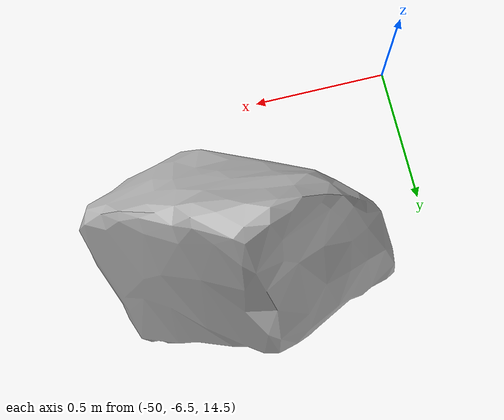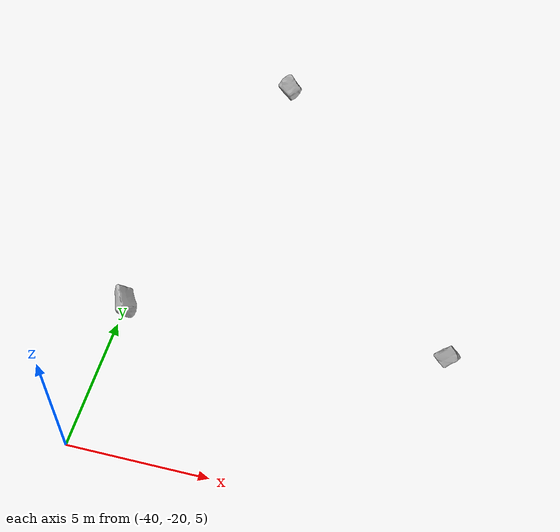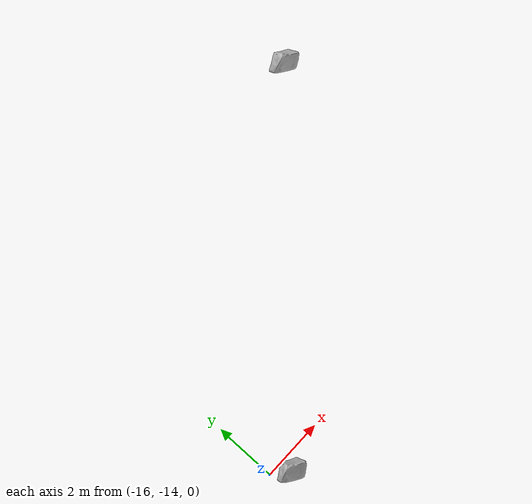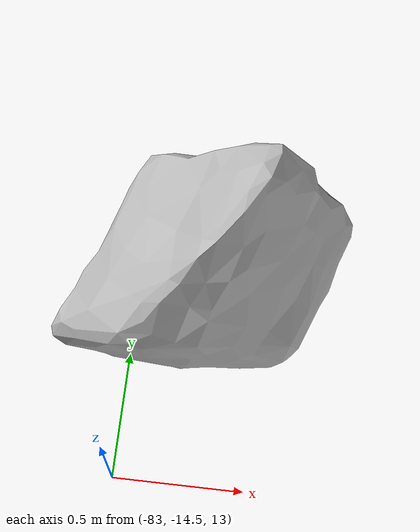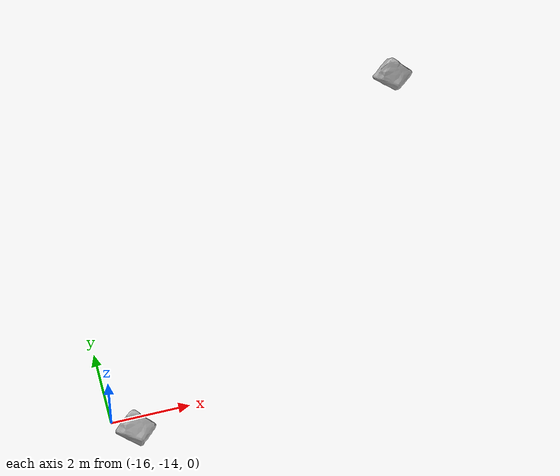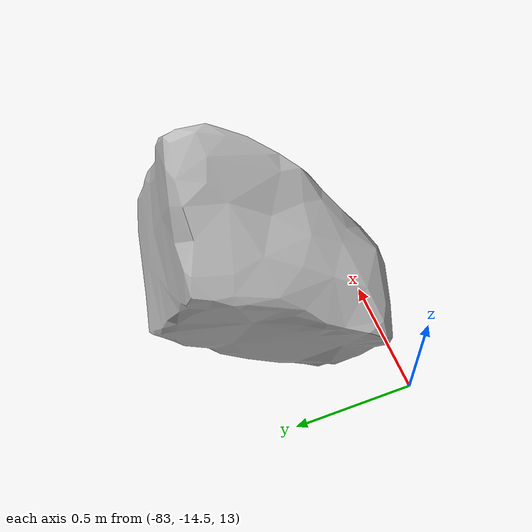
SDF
<sdf version="1.6">
 <world name="default">
  <light name="sun" type="directional">
   <pose>0 0 10 0 -0 0</pose>
   <diffuse>0.8 0.8 0.8 1</diffuse>
   <specular>0.2 0.2 0.2 1</specular>
   <attenuation>
    <range>1000</range>
    <constant>0.9</constant>
    <linear>0.01</linear>
    <quadratic>0.001</quadratic>
   </attenuation>
   <direction>-0.5 0.1 -0.9</direction>
  </light>
  <physics name="default_physics" default="0" type="ode">
   <ode>
    <solver>
     <type>quick</type>
     <iters>10</iters>
     <sor>1.3</sor>
     <use_dynamic_moi_rescaling>0</use_dynamic_moi_rescaling>
    </solver>
    <constraints>
     <cfm>0</cfm>
     <erp>0.2</erp>
     <contact_max_correcting_vel>100</contact_max_correcting_vel>
     <contact_surface_layer>0.001</contact_surface_layer>
    </constraints>
   </ode>
   <max_step_size>0.004</max_step_size>
   <real_time_factor>1</real_time_factor>
   <real_time_update_rate>250</real_time_update_rate>
  </physics>
  <gravity>0 0 -9.8066</gravity>
  <magnetic_field>6e-06 2.3e-05 -4.2e-05</magnetic_field>
  <atmosphere type="adiabatic"/>
  <scene><ambient>0.4 0.4 0.4 1</ambient><background>0.7 0.7 0.7 1</background><shadows>1</shadows></scene>
  <spherical_coordinates>
   <surface_model>EARTH_WGS84</surface_model>
   <latitude_deg>0</latitude_deg>
   <longitude_deg>0</longitude_deg>
   <elevation>0</elevation>
   <heading_deg>0</heading_deg>
  </spherical_coordinates>
  <model name="boulder">
   <pose>-6.66692 -5.53017 0.703163 1.05264 -0 0</pose>
   <static>1</static>
   <link name="body">
    <visual name="visual"><geometry><mesh><uri>model://boulder/boulder.dae</uri></mesh></geometry></visual>
    <inertial>
     <mass>0.05</mass>
     <inertia>
      <ixx>4.16667e-06</ixx>
      <iyy>5.20833e-07</iyy>
      <izz>3.85417e-06</izz>
      <ixy>0</ixy>
      <ixz>0</ixz>
      <iyz>0</iyz>
     </inertia>
    </inertial>
    <collision name="collision">
     <geometry><mesh><uri>model://boulder/boulder.dae</uri></mesh></geometry>
    </collision>
   </link>
  </model>
  <model name="boulder_0">
   <pose>-15.6447 -14.0056 0.337389 0.859223 -0 0</pose>
   <static>1</static>
   <link name="body">
    <visual name="visual"><geometry><mesh><uri>model://boulder/boulder.dae</uri></mesh></geometry></visual>
    <inertial>
     <mass>0.05</mass>
     <inertia>
      <ixx>4.16667e-06</ixx>
      <iyy>5.20833e-07</iyy>
      <izz>3.85417e-06</izz>
      <ixy>0</ixy>
      <ixz>0</ixz>
      <iyz>0</iyz>
     </inertia>
    </inertial>
    <collision name="collision">
     <geometry><mesh><uri>model://boulder/boulder.dae</uri></mesh></geometry>
    </collision>
   </link>
  </model>
  <model name="boulder_0_clone">
   <pose>-28.4507 -12.7236 3.13531 -2.05634 0 0</pose>
   <static>1</static>
   <link name="body">
    <visual name="visual"><geometry><mesh><uri>model://boulder/boulder.dae</uri></mesh></geometry></visual>
    <inertial>
     <mass>0.05</mass>
     <inertia>
      <ixx>4.16667e-06</ixx>
      <iyy>5.20833e-07</iyy>
      <izz>3.85417e-06</izz>
      <ixy>0</ixy>
      <ixz>0</ixz>
      <iyz>0</iyz>
     </inertia>
    </inertial>
    <collision name="collision">
     <geometry><mesh><uri>model://boulder/boulder.dae</uri></mesh></geometry>
    </collision>
   </link>
  </model>
  <model name="boulder_clone">
   <pose>-36.3918 -4.42434 8.35619 1.05264 -0 0</pose>
   <static>1</static>
   <link name="body">
    <visual name="visual"><geometry><mesh><uri>model://boulder/boulder.dae</uri></mesh></geometry></visual>
    <inertial>
     <mass>0.05</mass>
     <inertia>
      <ixx>4.16667e-06</ixx>
      <iyy>5.20833e-07</iyy>
      <izz>3.85417e-06</izz>
      <ixy>0</ixy>
      <ixz>0</ixz>
      <iyz>0</iyz>
     </inertia>
    </inertial>
    <collision name="collision">
     <geometry><mesh><uri>model://boulder/boulder.dae</uri></mesh></geometry>
    </collision>
   </link>
  </model>
  <model name="boulder_clone_clone">
   <pose>-37.9412 -17.2288 10.8823 1.21355 -0.383713 -0.786868</pose>
   <static>1</static>
   <link name="body">
    <visual name="visual"><geometry><mesh><uri>model://boulder/boulder.dae</uri></mesh></geometry></visual>
    <inertial>
     <mass>0.05</mass>
     <inertia>
      <ixx>4.16667e-06</ixx>
      <iyy>5.20833e-07</iyy>
      <izz>3.85417e-06</izz>
      <ixy>0</ixy>
      <ixz>0</ixz>
      <iyz>0</iyz>
     </inertia>
    </inertial>
    <collision name="collision">
     <geometry><mesh><uri>model://boulder/boulder.dae</uri></mesh></geometry>
    </collision>
   </link>
  </model>
  <model name="boulder_clone_clone_0">
   <pose>-49.484 -5.51817 15.0816 1.05264 -0 0</pose>
   <static>1</static>
   <link name="body">
    <visual name="visual"><geometry><mesh><uri>model://boulder/boulder.dae</uri></mesh></geometry></visual>
    <inertial>
     <mass>0.05</mass>
     <inertia>
      <ixx>4.16667e-06</ixx>
      <iyy>5.20833e-07</iyy>
      <izz>3.85417e-06</izz>
      <ixy>0</ixy>
      <ixz>0</ixz>
      <iyz>0</iyz>
     </inertia>
    </inertial>
    <collision name="collision">
     <geometry><mesh><uri>model://boulder/boulder.dae</uri></mesh></geometry>
    </collision>
   </link>
  </model>
  <model name="boulder_clone_clone_0_clone_0">
   <pose>-82.9849 -13.7922 14.0799 1.26718 0.426612 0.922731</pose>
   <static>1</static>
   <link name="body">
    <visual name="visual"><geometry><mesh><uri>model://boulder/boulder.dae</uri></mesh></geometry></visual>
    <inertial>
     <mass>0.05</mass>
     <inertia>
      <ixx>4.16667e-06</ixx>
      <iyy>5.20833e-07</iyy>
      <izz>3.85417e-06</izz>
      <ixy>0</ixy>
      <ixz>0</ixz>
      <iyz>0</iyz>
     </inertia>
    </inertial>
    <collision name="collision">
     <geometry><mesh><uri>model://boulder/boulder.dae</uri></mesh></geometry>
    </collision>
   </link>
  </model>
 </world>
</sdf>
